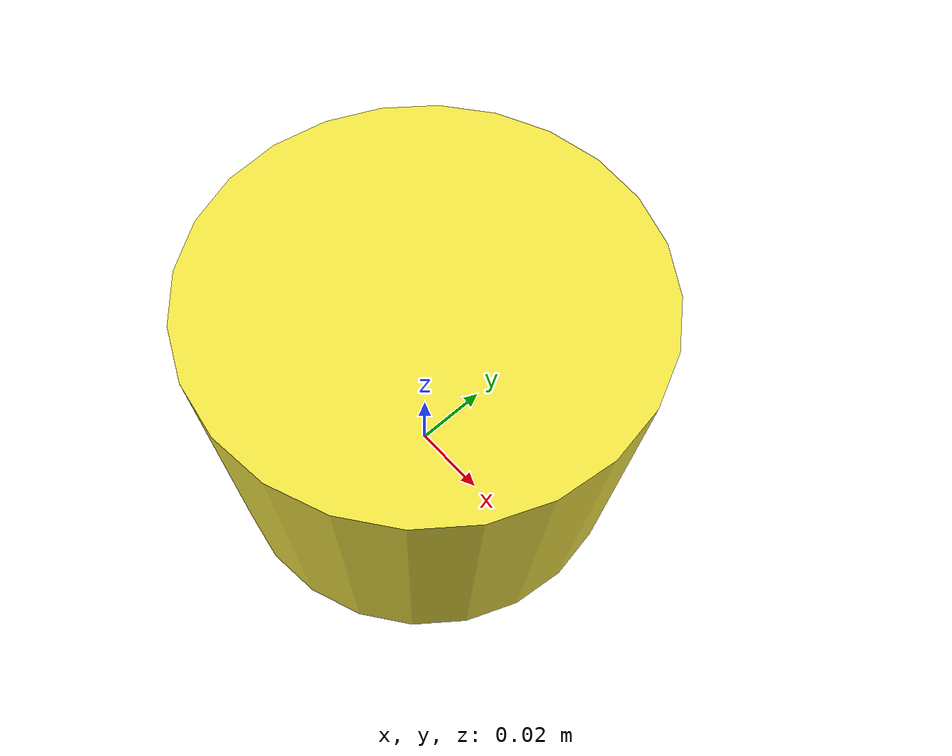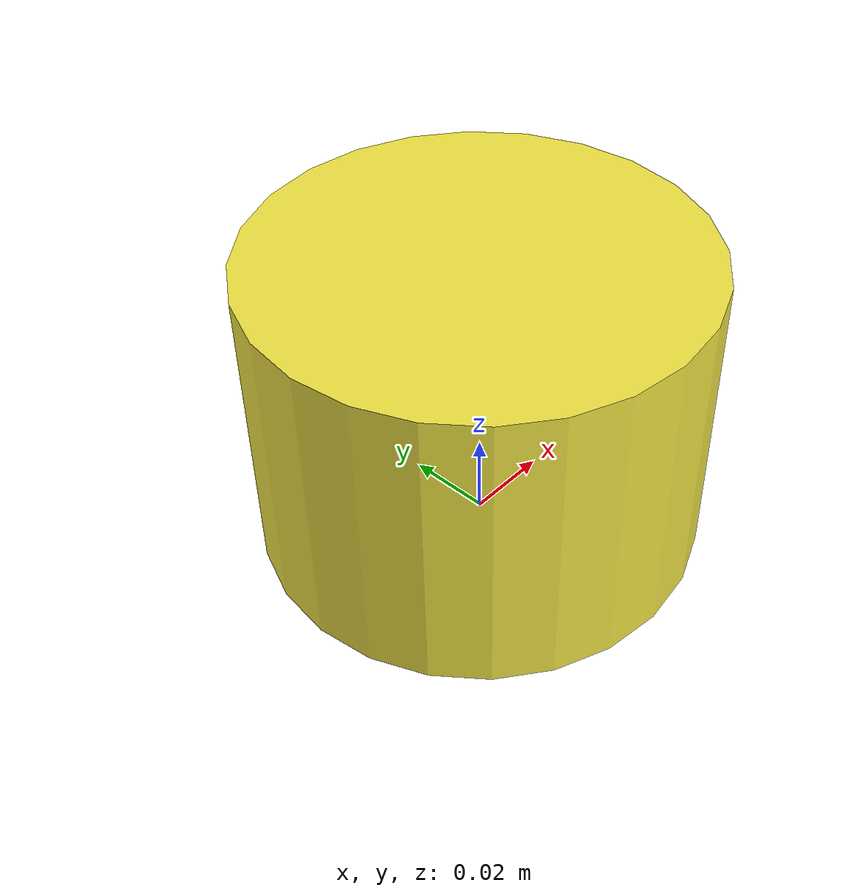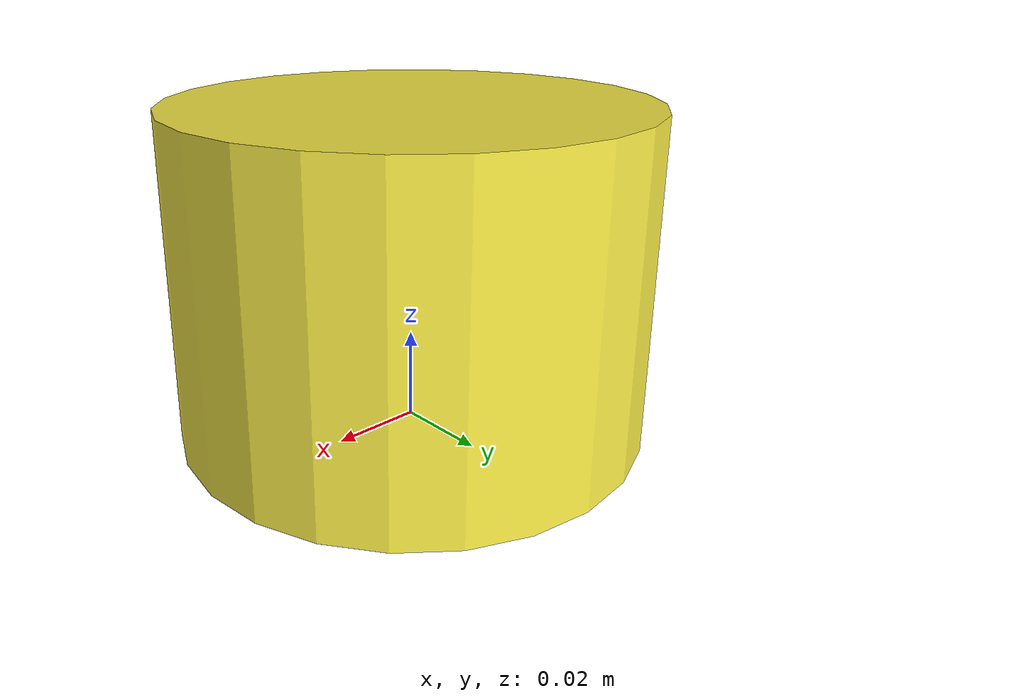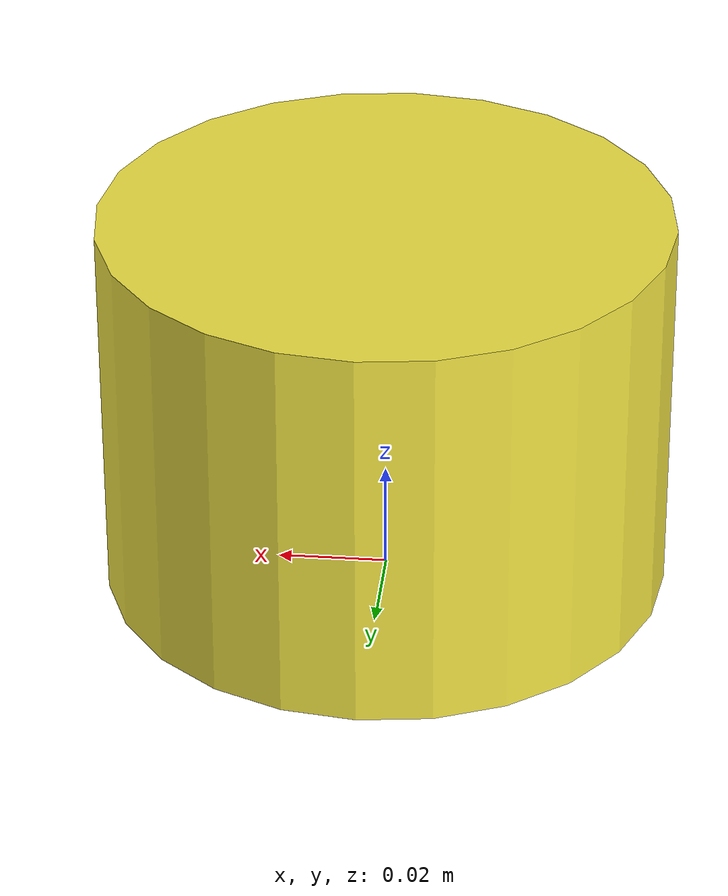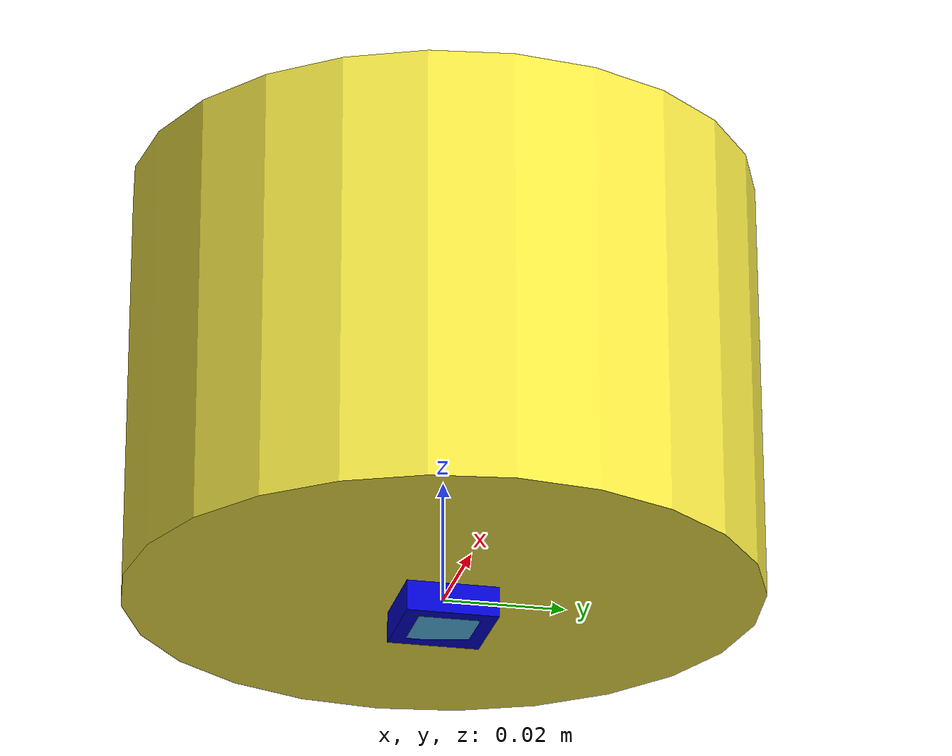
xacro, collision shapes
<?xml version="1.0"?>
<robot xmlns:xacro="http://www.ros.org/wiki/xacro" name="example">
  <xacro:arg name="gpu" default="false"/>
  <xacro:property name="gpu" value="$(arg gpu)" />
  <xacro:arg name="organize_cloud" default="false"/>
  <xacro:property name="organize_cloud" value="$(arg organize_cloud)" />

  <material name="blue">
    <color rgba="0 0 0.8 1"/>
  </material>

  <!-- Base Footprint -->
  <link name="base_footprint" />

  <!-- Base Link -->
  <joint name="footprint" type="fixed" >
   <parent link="base_footprint" />
    <child link="base_link" />
    <origin xyz="0 0 0" rpy="0 0 0" />
  </joint>
  <link name="base_link" >
    <collision>
      <geometry>
        <box size="0.01 0.01 0.01" />
      </geometry>
    </collision>

    <inertial>
      <origin xyz="0 0 0"/>
      <mass value="10"/>
      <inertia ixx="3.0" ixy="0.0" ixz="0.0"
               iyy="3.0" iyz="0.0"
               izz="3.0" />
    </inertial>
  </link>

    <joint name="imu_joint" type="fixed">
        <parent link="base_link"/>
	<child link="imu_link"/>
	<origin xyz="0 0 0" rpy="0 0 0"/>
    </joint>

    <link name="imu_link">
      <visual>
        <origin rpy="0 0 0" xyz="0 0 0"/>
        <geometry>
          <box size="0.015 0.015 0.01"/>
        </geometry>
      <material name="blue"/>
      </visual>
      <collision>
        <origin rpy="0 0 0" xyz="0 0 0"/>
        <geometry>
          <box size="0.015 0.015 0.01"/>
        </geometry>
      </collision>
      <inertial>
        <mass value="0.01"/>
        <origin xyz="0 0 0"/>
        <inertia ixx="1e-6" ixy="0" ixz="0" iyy="1e-6" iyz="0" izz="1e-6"/>
      </inertial>
    </link>

  <gazebo reference="imu_link">
    <gravity>false</gravity>
    <sensor name="imu_sensor" type="imu">
      <always_on>true</always_on>
      <update_rate>200</update_rate>
      <visualize>true</visualize>
      <topic>__default_topic__</topic>
      <pose>0 0 0 0 0 0</pose>

<imu>
  <angular_velocity>
    <x>
      <noise type="gaussian">
        <mean>0.0</mean>
        <stddev>0.0000873</stddev> <!-- 0.005 deg/s/sqrt(Hz) converted to rad/s -->
        <bias_mean>0.0000387</bias_mean> <!-- 8 deg/hr converted to rad/s -->
        <bias_stddev>0.00000222</bias_stddev> <!-- Bias instability as stddev -->
      </noise>
    </x>
    <y>
      <noise type="gaussian">
        <mean>0.0</mean>
        <stddev>0.0000873</stddev>
        <bias_mean>0.0000387</bias_mean>
        <bias_stddev>0.00000222</bias_stddev>
      </noise>
    </y>
    <z>
      <noise type="gaussian">
        <mean>0.0</mean>
        <stddev>0.0000873</stddev>
        <bias_mean>0.0000387</bias_mean>
        <bias_stddev>0.00000222</bias_stddev>
      </noise>
    </z>
  </angular_velocity>

  <linear_acceleration>
    <x>
      <noise type="gaussian">
        <mean>0.0</mean>
        <stddev>0.000196</stddev> <!-- 20 ug/sqrt(Hz) -->
        <bias_mean>0.00004</bias_mean> <!-- Bias instability -->
        <bias_stddev>0.00002</bias_stddev> <!-- Example value, refine based on application -->
      </noise>
    </x>
    <y>
      <noise type="gaussian">
        <mean>0.0</mean>
        <stddev>0.000196</stddev>
        <bias_mean>0.00004</bias_mean>
        <bias_stddev>0.00002</bias_stddev>
      </noise>
    </y>
    <z>
      <noise type="gaussian">
        <mean>0.0</mean>
        <stddev>0.000196</stddev>
        <bias_mean>0.00004</bias_mean>
        <bias_stddev>0.00002</bias_stddev>
      </noise>
    </z>
  </linear_acceleration>
</imu>

      <plugin filename="libgazebo_ros_imu_sensor.so" name="imu_plugin">
        <topicName>imu_raw</topicName>
        <update_rate>0</update_rate>
        <bodyName>imu_link</bodyName>
        <updateRateHZ>200.0</updateRateHZ>
        <gaussianNoise>0.0</gaussianNoise>
        <xyzOffset>0 0 0</xyzOffset>
        <rpyOffset>0 0 0</rpyOffset>
        <frameName>base_link</frameName>
        <initialOrientationAsReference>false</initialOrientationAsReference>
      </plugin>
    </sensor>
  </gazebo>

  <xacro:include filename="$(find velodyne_description)/urdf/VLP-16.urdf.xacro"/>
  <xacro:VLP-16 parent="base_link" name="velodyne" topic="/velodyne_points" organize_cloud="${organize_cloud}" hz="10" samples="440" gpu="${gpu}">
    <origin xyz="0 0 0" rpy="0 0 0" />
  </xacro:VLP-16>

    <gazebo>
    <plugin name="ConstantVelocityPlugin" filename="libConstantVelocityPlugin.so">
      <topicName>/cmd_vel</topicName>
    </plugin>
  </gazebo>

</robot>

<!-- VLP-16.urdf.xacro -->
<robot xmlns:xacro="http://www.ros.org/wiki/xacro" name="VLP-16">
  <xacro:property name="M_PI" value="3.1415926535897931" />
  <xacro:macro name="VLP-16" params="*origin parent:=base_link name:=velodyne tf_prefix:='' topic:=/velodyne_points organize_cloud:=false hz:=10 lasers:=16 samples:=1875 collision_range:=0.3 min_range:=0.9 max_range:=130.0 noise:=0.008 min_angle:=-${M_PI} max_angle:=${M_PI} gpu:=false">

    <joint name="${name}_base_mount_joint" type="fixed">
      <xacro:insert_block name="origin" />
      <parent link="${parent}"/>
      <child link="${name}_base_link"/>
    </joint>

    <link name="${name}_base_link">
      <inertial>
        <mass value="0.01"/>
        <origin xyz="0 0 0.03585"/>
        <inertia ixx="${(0.83 * (3.0*0.0516*0.0516 + 0.0717*0.0717)) / 12.0}" ixy="0" ixz="0"
          iyy="${(0.83 * (3.0*0.0516*0.0516 + 0.0717*0.0717)) / 12.0}" iyz="0"
          izz="${0.5 * 0.83 * (0.0516*0.0516)}"/>
      </inertial>
      <visual>
        <geometry>
          <mesh filename="package://velodyne_description/meshes/VLP16_base_1.dae" />
        </geometry>
      </visual>
      <visual>
        <geometry>
          <mesh filename="package://velodyne_description/meshes/VLP16_base_2.dae" />
        </geometry>
      </visual>
      <collision>
        <origin rpy="0 0 0" xyz="0 0 0.03585"/>
        <geometry>
          <cylinder radius="0.0516" length="0.0717"/>
        </geometry>
      </collision>
    </link>

    <joint name="${name}_base_scan_joint" type="fixed" >
      <origin xyz="0 0 0.0377" rpy="0 0 0" />
      <parent link="${name}_base_link" />
      <child link="${name}"/>
    </joint>

    <link name="${name}">
      <inertial>
        <mass value="0.01"/>
        <origin xyz="0 0 0"/>
        <inertia ixx="1e-7" ixy="0" ixz="0" iyy="1e-7" iyz="0" izz="1e-7"/>
      </inertial>
      <visual>
        <origin xyz="0 0 -0.0377" />
        <geometry>
          <mesh filename="package://velodyne_description/meshes/VLP16_scan.dae" />
        </geometry>
      </visual>
      <collision>
        <geometry>
          <sphere radius="0"/>
        </geometry>
      </collision>
    </link>

    <!-- Gazebo requires the velodyne_gazebo_plugins package -->
    <gazebo reference="${name}">
      <xacro:if value="${gpu}">
        <sensor type="gpu_ray" name="${name}-VLP16">
          <pose>0 0 0 0 0 0</pose>
          <visualize>false</visualize>
          <update_rate>${hz}</update_rate>
          <ray>
            <scan>
              <horizontal>
                <samples>${samples}</samples>
                <resolution>1</resolution>
                <min_angle>${min_angle}</min_angle>
                <max_angle>${max_angle}</max_angle>
              </horizontal>
              <vertical>
                <samples>${lasers}</samples>
                <resolution>1</resolution>
                <min_angle>-${15.0*M_PI/180.0}</min_angle>
                <max_angle> ${15.0*M_PI/180.0}</max_angle>
              </vertical>
            </scan>
            <range>
              <min>${collision_range}</min>
              <max>${max_range+1}</max>
              <resolution>0.001</resolution>
            </range>
            <noise>
              <type>gaussian</type>
              <mean>0.0</mean>
              <stddev>0.0</stddev>
            </noise>
          </ray>
          <plugin name="gazebo_ros_laser_controller" filename="libgazebo_ros_velodyne_laser.so">
            <ros>
              <namespace>/${name}</namespace>
              <remapping>~/out:=${topic}</remapping>
            </ros>
            <tf_prefix>${tf_prefix}</tf_prefix>
            <frame_name>${name}</frame_name>
            <organize_cloud>${organize_cloud}</organize_cloud>
            <min_range>${min_range}</min_range>
            <max_range>${max_range}</max_range>
            <gaussian_noise>${noise}</gaussian_noise>
          </plugin>
        </sensor>
      </xacro:if>
      <xacro:unless value="${gpu}">
        <sensor type="ray" name="${name}-VLP16">
          <pose>0 0 0 0 0 0</pose>
          <visualize>false</visualize>
          <update_rate>${hz}</update_rate>
          <ray>
            <scan>
              <horizontal>
                <samples>${samples}</samples>
                <resolution>1</resolution>
                <min_angle>${min_angle}</min_angle>
                <max_angle>${max_angle}</max_angle>
              </horizontal>
              <vertical>
                <samples>${lasers}</samples>
                <resolution>1</resolution>
                <min_angle>-${15.0*M_PI/180.0}</min_angle>
                <max_angle> ${15.0*M_PI/180.0}</max_angle>
              </vertical>
            </scan>
            <range>
              <min>${collision_range}</min>
              <max>${max_range+1}</max>
              <resolution>0.001</resolution>
            </range>
            <noise>
              <type>gaussian</type>
              <mean>0.0</mean>
              <stddev>0.0</stddev>
            </noise>
          </ray>
          <plugin name="gazebo_ros_laser_controller" filename="libgazebo_ros_velodyne_laser.so">
            <ros>
              <namespace>/${name}</namespace>
              <remapping>~/out:=${topic}</remapping>
            </ros>
            <tf_prefix>${tf_prefix}</tf_prefix>
            <frame_name>${name}</frame_name>
            <organize_cloud>${organize_cloud}</organize_cloud>
            <min_range>${min_range}</min_range>
            <max_range>${max_range}</max_range>
            <gaussian_noise>${noise}</gaussian_noise>
          </plugin>
        </sensor>
      </xacro:unless>
    </gazebo>

  </xacro:macro>
</robot>
